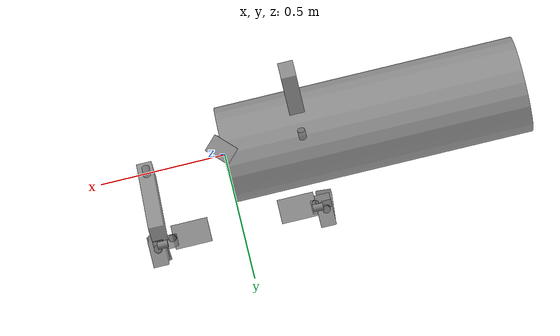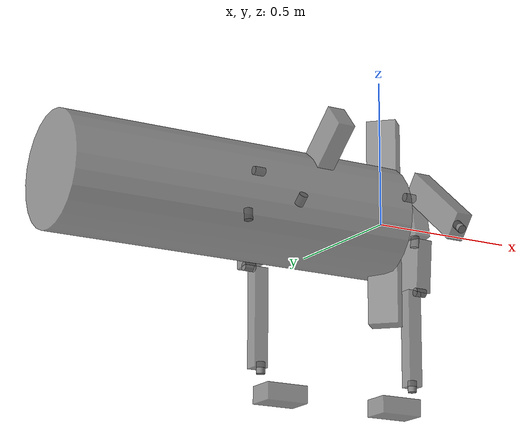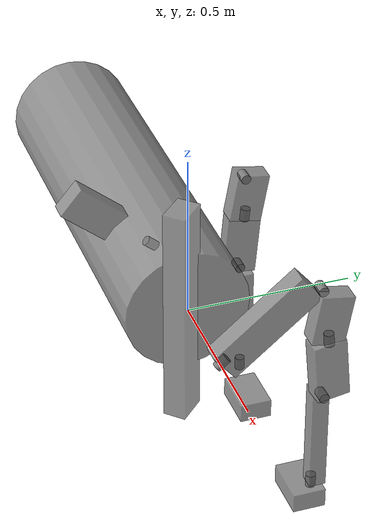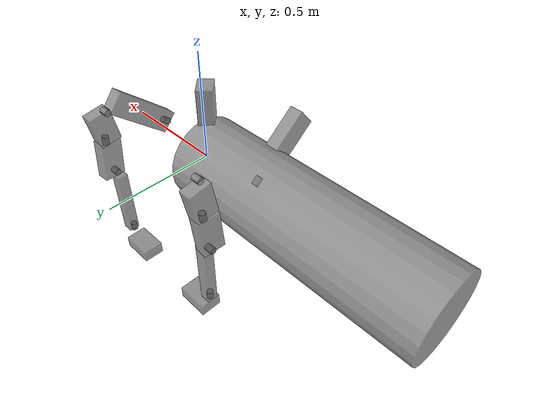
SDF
<?xml version="1.0" encoding="UTF-8" standalone="yes"?>
<sdf version="1.5">
    <model name="upperBodyXO_v1">
        <joint name="ra1_sho_abad" type="revolute">
            <axis>
                <dynamics>
                    <damping>0.1</damping>
                    <friction>0</friction>
                </dynamics>
                <limit>
                    <effort>100</effort>
                    <lower>-0.17453</lower>
                    <upper>2.0944</upper>
                    <velocity>12</velocity>
                </limit>
                <xyz>-0.64279 -0.76604 0</xyz>
            </axis>
            <child>r_ushou</child>
            <parent>pelvis</parent>
        </joint>
        <joint name="ra2_sho_flex" type="revolute">
            <axis>
                <dynamics>
                    <damping>0.1</damping>
                    <friction>0</friction>
                </dynamics>
                <limit>
                    <effort>100</effort>
                    <lower>-0.47647</lower>
                    <upper>2.0944</upper>
                    <velocity>12</velocity>
                </limit>
                <xyz>0 0 -1</xyz>
            </axis>
            <child>r_lshou</child>
            <parent>r_ushou</parent>
        </joint>
        <joint name="ra3_hum_rota" type="revolute">
            <axis>
                <dynamics>
                    <damping>0.1</damping>
                    <friction>0</friction>
                </dynamics>
                <limit>
                    <effort>100</effort>
                    <lower>-1.3963</lower>
                    <upper>0.87266</upper>
                    <velocity>12</velocity>
                </limit>
                <xyz>-0.99619 -0.087156 0</xyz>
            </axis>
            <child>r_uarm</child>
            <parent>r_lshou</parent>
        </joint>
        <joint name="ra4_elb_flex" type="revolute">
            <axis>
                <dynamics>
                    <damping>0.1</damping>
                    <friction>0</friction>
                </dynamics>
                <limit>
                    <effort>100</effort>
                    <lower>0</lower>
                    <upper>2.6704</upper>
                    <velocity>12</velocity>
                </limit>
                <xyz>0 0 -1</xyz>
            </axis>
            <child>r_larm</child>
            <parent>r_uarm</parent>
        </joint>
        <joint name="ra5_wri_rota" type="revolute">
            <axis>
                <dynamics>
                    <damping>0.1</damping>
                    <friction>0</friction>
                </dynamics>
                <limit>
                    <effort>100</effort>
                    <lower>-1.5708</lower>
                    <upper>1.5708</upper>
                    <velocity>10</velocity>
                </limit>
                <xyz>-1 -9.7145e-17 0</xyz>
            </axis>
            <child>r_hand</child>
            <parent>r_larm</parent>
        </joint>
        <joint name="la1_sho_abad" type="revolute">
            <axis>
                <dynamics>
                    <damping>0.1</damping>
                    <friction>0</friction>
                </dynamics>
                <limit>
                    <effort>100</effort>
                    <lower>-0.17453</lower>
                    <upper>2.0944</upper>
                    <velocity>12</velocity>
                </limit>
                <xyz>0.64279 0.76604 0</xyz>
            </axis>
            <child>l_ushou</child>
            <parent>pelvis</parent>
        </joint>
        <joint name="la2_sho_flex" type="revolute">
            <axis>
                <dynamics>
                    <damping>0.1</damping>
                    <friction>0</friction>
                </dynamics>
                <limit>
                    <effort>100</effort>
                    <lower>-0.47647</lower>
                    <upper>2.0944</upper>
                    <velocity>12</velocity>
                </limit>
                <xyz>0 0 -1</xyz>
            </axis>
            <child>l_lshou</child>
            <parent>l_ushou</parent>
        </joint>
        <joint name="la3_hum_rota" type="revolute">
            <axis>
                <dynamics>
                    <damping>0.1</damping>
                    <friction>0</friction>
                </dynamics>
                <limit>
                    <effort>100</effort>
                    <lower>-1.3963</lower>
                    <upper>0.87266</upper>
                    <velocity>12</velocity>
                </limit>
                <xyz>0.99619 0.087156 0</xyz>
            </axis>
            <child>l_uarm</child>
            <parent>l_lshou</parent>
        </joint>
        <joint name="la4_elb_flex" type="revolute">
            <axis>
                <dynamics>
                    <damping>0.1</damping>
                    <friction>0</friction>
                </dynamics>
                <limit>
                    <effort>100</effort>
                    <lower>0</lower>
                    <upper>2.6704</upper>
                    <velocity>12</velocity>
                </limit>
                <xyz>0 0 -1</xyz>
            </axis>
            <child>l_larm</child>
            <parent>l_uarm</parent>
        </joint>
        <joint name="la5_wri_rota" type="revolute">
            <axis>
                <dynamics>
                    <damping>0.1</damping>
                    <friction>0</friction>
                </dynamics>
                <limit>
                    <effort>100</effort>
                    <lower>-1.5708</lower>
                    <upper>1.5708</upper>
                    <velocity>10</velocity>
                </limit>
                <xyz>1 9.7145e-17 0</xyz>
            </axis>
            <child>l_hand</child>
            <parent>l_larm</parent>
        </joint>
        <joint name="ft3_l_hand" type="revolute">
            <axis>
                <dynamics>
                    <damping>0.1</damping>
                    <friction>0</friction>
                </dynamics>
                <limit>
                    <effort>200</effort>
                    <lower>-0.005</lower>
                    <upper>0.005</upper>
                    <velocity>3</velocity>
                </limit>
                <xyz>9.7145e-17 -1 0</xyz>
            </axis>
            <child>l_hand_FT</child>
            <parent>l_hand</parent>
        </joint>
        <joint name="ft4_r_hand" type="revolute">
            <axis>
                <dynamics>
                    <damping>0.1</damping>
                    <friction>0</friction>
                </dynamics>
                <limit>
                    <effort>200</effort>
                    <lower>-0.005</lower>
                    <upper>0.005</upper>
                    <velocity>4</velocity>
                </limit>
                <xyz>-9.7145e-17 1 0</xyz>
            </axis>
            <child>r_hand_FT</child>
            <parent>r_hand</parent>
        </joint>
        <link name="pelvis">
            <inertial>
                <inertia>
                    <ixx>0.086831</ixx>
                    <ixy>-9.8e-05</ixy>
                    <ixz>-1.4e-06</ixz>
                    <iyy>0.12768</iyy>
                    <iyz>-0.019368</iyz>
                    <izz>0.12709</izz>
                </inertia>
                <mass>12.8142</mass>
                <pose>0.00115 0.02425 0.00012 0 -1.5708 0</pose>
            </inertial>
            <pose>0 0 0 0 0 0</pose>
            <sensor name="imu_sensor_at_pelvis_frame" type="imu">
                <imu>
                    <noise>
                        <accel>
                            <bias_mean>0.1</bias_mean>
                            <bias_stddev>0.001</bias_stddev>
                            <mean>0</mean>
                            <stddev>0.017</stddev>
                        </accel>
                        <rate>
                            <bias_mean>7.5e-06</bias_mean>
                            <bias_stddev>8e-07</bias_stddev>
                            <mean>0</mean>
                            <stddev>0.0002</stddev>
                        </rate>
                        <type>gaussian</type>
                    </noise>
                </imu>
                <pose>0 0 0 0 0 0</pose>
                <update_rate>1000</update_rate>
            </sensor>
            <visual name="pelvis_visual_box">
                <geometry>
                    <box>
                        <size>0.7 0.1 0.07</size>
                    </box>
                </geometry>
                <material>
                    <ambient>1 1 1 1</ambient>
                    <diffuse>0.5 0.5 0.5 1</diffuse>
                    <emissive>0 0 0 1</emissive>
                    <specular>1 1 1 1</specular>
                </material>
                <transparency>0.2</transparency>
                <pose>0 -0.02 0 0.7854 0 0</pose>
            </visual>
            <visual name="pelvis_visual_box">
                <geometry>
                    <cylinder>
                        <length>1.2</length>
                        <radius>0.1905</radius>
                    </cylinder>
                </geometry>
                <material>
                    <ambient>1 1 1 1</ambient>
                    <diffuse>0.5 0.5 0.5 1</diffuse>
                    <emissive>0 0 0 1</emissive>
                    <specular>1 1 1 1</specular>
                </material>
                <transparency>0.2</transparency>
                <pose>0 0 0.6 0 0 0</pose>
            </visual>
        </link>
        <link name="r_ushou">
            <inertial>
                <inertia>
                    <ixx>0.0017929</ixx>
                    <ixy>0.0017929</ixy>
                    <ixz>0.0046508</ixz>
                    <iyy>0.034874</iyy>
                    <iyz>0.0073972</iyz>
                    <izz>0.012524</izz>
                </inertia>
                <mass>4.8909</mass>
                <pose>0.0164 0.0039 -0.19416 0 0 0</pose>
            </inertial>
            <pose>0.036922 -0.0097288 -0.31433 0 1.5708 -2.2689</pose>
            <visual name="r_ushou_visual_jointCylinder">
                <geometry>
                    <cylinder>
                        <length>0.04</length>
                        <radius>0.015</radius>
                    </cylinder>
                </geometry>
                <material>
                    <ambient>0 0 0 1</ambient>
                    <diffuse>0.5 0.5 0.5 1</diffuse>
                    <emissive>0 0 0 1</emissive>
                    <specular>0 0 0 1</specular>
                </material>
                <pose>0 0 0 0 0 0</pose>
            </visual>
            <visual name="r_ushou_visual_box">
                <geometry>
                    <box>
                        <size>0.06 0.1 0.3302</size>
                    </box>
                </geometry>
                <material>
                    <ambient>1 1 1 1</ambient>
                    <diffuse>0.5 0.5 0.5 1</diffuse>
                    <emissive>0 0 0 1</emissive>
                    <specular>1 1 1 1</specular>
                </material>
                <transparency>0.2</transparency>
                <pose>0 0 -0.16307 0 0 0</pose>
            </visual>
        </link>
        <link name="r_lshou">
            <inertial>
                <inertia>
                    <ixx>0.0042548</ixx>
                    <ixy>0.0002492</ixy>
                    <ixz>-0.0002769</ixz>
                    <iyy>0.0076126</iyy>
                    <iyz>-5.2e-05</iyz>
                    <izz>0.007705</izz>
                </inertia>
                <mass>3.2262</mass>
                <pose>0.11093 0.01825 0.02571 0 0 0</pose>
            </inertial>
            <pose>0.21581 0.28249 -0.30798 3.1416 0 -3.0543</pose>
            <visual name="r_lshou_visual_jointCylinder">
                <geometry>
                    <cylinder>
                        <length>0.04</length>
                        <radius>0.015</radius>
                    </cylinder>
                </geometry>
                <material>
                    <ambient>0 0 0 1</ambient>
                    <diffuse>0.5 0.5 0.5 1</diffuse>
                    <emissive>0 0 0 1</emissive>
                    <specular>0 0 0 1</specular>
                </material>
                <pose>0 0 0 0 0 0</pose>
            </visual>
            <visual name="r_lshou_visual_box">
                <geometry>
                    <box>
                        <size>0.15494 0.1 0.06</size>
                    </box>
                </geometry>
                <material>
                    <ambient>1 1 1 1</ambient>
                    <diffuse>0.5 0.5 0.5 1</diffuse>
                    <emissive>0 0 0 1</emissive>
                    <specular>1 1 1 1</specular>
                </material>
                <transparency>0.2</transparency>
                <pose>0.0772 0.024536 0.024638 0 0 -0.087266</pose>
            </visual>
        </link>
        <link name="r_uarm">
            <inertial>
                <inertia>
                    <ixx>0.019109</ixx>
                    <ixy>0.0001927</ixy>
                    <ixz>-0.0025684</ixz>
                    <iyy>0.018812</iyy>
                    <iyz>-0.0002236</iyz>
                    <izz>0.011074</izz>
                </inertia>
                <mass>4.8829</mass>
                <pose>-0.00114 -0.00151 0.11122 0 0 0</pose>
            </inertial>
            <pose>0.061406 0.29874 -0.33889 0 -1.5708 -0.087266</pose>
            <visual name="r_uarm_visual_jointCylinder">
                <geometry>
                    <cylinder>
                        <length>0.04</length>
                        <radius>0.015</radius>
                    </cylinder>
                </geometry>
                <material>
                    <ambient>0 0 0 1</ambient>
                    <diffuse>0.5 0.5 0.5 1</diffuse>
                    <emissive>0 0 0 1</emissive>
                    <specular>0 0 0 1</specular>
                </material>
                <pose>0 0 0 0 0 0</pose>
            </visual>
            <visual name="r_uarm_visual_box">
                <geometry>
                    <box>
                        <size>0.06 0.1 0.18796</size>
                    </box>
                </geometry>
                <material>
                    <ambient>1 1 1 1</ambient>
                    <diffuse>0.5 0.5 0.5 1</diffuse>
                    <emissive>0 0 0 1</emissive>
                    <specular>1 1 1 1</specular>
                </material>
                <transparency>0.2</transparency>
                <pose>0 -0.0081788 0.09398 0 0 -0.087266</pose>
            </visual>
        </link>
        <link name="r_larm">
            <inertial>
                <inertia>
                    <ixx>0.0004628</ixx>
                    <ixy>0.0009098</ixy>
                    <ixz>-0.0004177</ixz>
                    <iyy>0.010386</iyy>
                    <iyz>-1.28e-05</iyz>
                    <izz>0.010507</izz>
                </inertia>
                <mass>0.69113</mass>
                <pose>0.11918 -0.02395 -0.03337 0 0 0</pose>
            </inertial>
            <pose>-0.12707 0.28225 -0.34524 3.1416 0 -3.1416</pose>
            <visual name="r_larm_visual_jointCylinder">
                <geometry>
                    <cylinder>
                        <length>0.04</length>
                        <radius>0.015</radius>
                    </cylinder>
                </geometry>
                <material>
                    <ambient>0 0 0 1</ambient>
                    <diffuse>0.5 0.5 0.5 1</diffuse>
                    <emissive>0 0 0 1</emissive>
                    <specular>0 0 0 1</specular>
                </material>
                <pose>0 0 0 0 0 0</pose>
            </visual>
            <visual name="r_larm_visual_box">
                <geometry>
                    <box>
                        <size>0.3429 0.05 0.05</size>
                    </box>
                </geometry>
                <material>
                    <ambient>1 1 1 1</ambient>
                    <diffuse>0.5 0.5 0.5 1</diffuse>
                    <emissive>0 0 0 1</emissive>
                    <specular>1 1 1 1</specular>
                </material>
                <transparency>0.2</transparency>
                <pose>0.17145 0.003048 -0.03683 0 0 0</pose>
            </visual>
        </link>
        <link name="r_hand">
            <inertial>
                <inertia>
                    <ixx>0.016224</ixx>
                    <ixy>0.000437</ixy>
                    <ixz>0.0051128</ixz>
                    <iyy>0.039465</iyy>
                    <iyz>-0.0003224</iyz>
                    <izz>0.034758</izz>
                </inertia>
                <mass>3.2281</mass>
                <pose>0.07931 0.00146 0.0648 0 0 0</pose>
            </inertial>
            <pose>-0.46997 0.27615 -0.30226 0 -1.5708 -9.7145e-17</pose>
            <visual name="r_hand_visual_jointCylinder">
                <geometry>
                    <cylinder>
                        <length>0.04</length>
                        <radius>0.015</radius>
                    </cylinder>
                </geometry>
                <material>
                    <ambient>0 0 0 1</ambient>
                    <diffuse>0.5 0.5 0.5 1</diffuse>
                    <emissive>0 0 0 1</emissive>
                    <specular>0 0 0 1</specular>
                </material>
                <pose>0 0 0 0 0 0</pose>
            </visual>
            <visual name="r_hand_visual_box">
                <geometry>
                    <box>
                        <size>0.1524 0.1 0.06</size>
                    </box>
                </geometry>
                <material>
                    <ambient>1 1 1 1</ambient>
                    <diffuse>0.5 0.5 0.5 1</diffuse>
                    <emissive>0 0 0 1</emissive>
                    <specular>1 1 1 1</specular>
                </material>
                <transparency>0.2</transparency>
                <pose>0.0762 0 0.083388 0 0 0</pose>
            </visual>
        </link>
        <link name="l_ushou">
            <inertial>
                <inertia>
                    <ixx>0.036159</ixx>
                    <ixy>0.0018219</ixy>
                    <ixz>-0.0046394</ixz>
                    <iyy>0.034888</iyy>
                    <iyz>-0.0074231</iyz>
                    <izz>0.012539</izz>
                </inertia>
                <mass>4.8909</mass>
                <pose>0.01647 0.00381 0.19425 0 0 0</pose>
            </inertial>
            <pose>0.036922 -0.0097288 0.31432 0 -1.5708 2.2689</pose>
            <visual name="l_ushou_visual_jointCylinder">
                <geometry>
                    <cylinder>
                        <length>0.04</length>
                        <radius>0.015</radius>
                    </cylinder>
                </geometry>
                <material>
                    <ambient>0 0 0 1</ambient>
                    <diffuse>0.5 0.5 0.5 1</diffuse>
                    <emissive>0 0 0 1</emissive>
                    <specular>0 0 0 1</specular>
                </material>
                <pose>0 0 0 0 0 0</pose>
            </visual>
            <visual name="l_ushou_visual_box">
                <geometry>
                    <box>
                        <size>0.06 0.1 0.3302</size>
                    </box>
                </geometry>
                <material>
                    <ambient>1 1 1 1</ambient>
                    <diffuse>0.5 0.5 0.5 1</diffuse>
                    <emissive>0 0 0 1</emissive>
                    <specular>1 1 1 1</specular>
                </material>
                <transparency>0.2</transparency>
                <pose>0 0 0.16307 0 0 0</pose>
            </visual>
        </link>
        <link name="l_lshou">
            <inertial>
                <inertia>
                    <ixx>0.0042649</ixx>
                    <ixy>0.0002646</ixy>
                    <ixz>0.0002986</ixz>
                    <iyy>0.0076452</iyy>
                    <iyz>5.18e-05</iyz>
                    <izz>0.0077414</izz>
                </inertia>
                <mass>3.231</mass>
                <pose>0.11087 0.0182 -0.02557 0 0 0</pose>
            </inertial>
            <pose>0.21581 0.28249 0.30797 3.1416 0 -3.0543</pose>
            <visual name="l_lshou_visual_jointCylinder">
                <geometry>
                    <cylinder>
                        <length>0.04</length>
                        <radius>0.015</radius>
                    </cylinder>
                </geometry>
                <material>
                    <ambient>0 0 0 1</ambient>
                    <diffuse>0.5 0.5 0.5 1</diffuse>
                    <emissive>0 0 0 1</emissive>
                    <specular>0 0 0 1</specular>
                </material>
                <pose>0 0 0 0 0 0</pose>
            </visual>
            <visual name="l_lshou_visual_box">
                <geometry>
                    <box>
                        <size>0.15494 0.1 0.06</size>
                    </box>
                </geometry>
                <material>
                    <ambient>1 1 1 1</ambient>
                    <diffuse>0.5 0.5 0.5 1</diffuse>
                    <emissive>0 0 0 1</emissive>
                    <specular>1 1 1 1</specular>
                </material>
                <transparency>0.2</transparency>
                <pose>0.0772 0.024536 -0.024638 0 0 -0.087266</pose>
            </visual>
        </link>
        <link name="l_uarm">
            <inertial>
                <inertia>
                    <ixx>0.019132</ixx>
                    <ixy>0.0001585</ixy>
                    <ixz>0.0025749</ixz>
                    <iyy>0.018815</iyy>
                    <iyz>0.0002531</iyz>
                    <izz>0.011079</izz>
                </inertia>
                <mass>4.8803</mass>
                <pose>-0.00112 -0.00157 -0.11125 0 0 0</pose>
            </inertial>
            <pose>0.061403 0.29873 0.33889 0 1.5708 0.087266</pose>
            <visual name="l_uarm_visual_jointCylinder">
                <geometry>
                    <cylinder>
                        <length>0.04</length>
                        <radius>0.015</radius>
                    </cylinder>
                </geometry>
                <material>
                    <ambient>0 0 0 1</ambient>
                    <diffuse>0.5 0.5 0.5 1</diffuse>
                    <emissive>0 0 0 1</emissive>
                    <specular>0 0 0 1</specular>
                </material>
                <pose>0 0 0 0 0 0</pose>
            </visual>
            <visual name="l_uarm_visual_box">
                <geometry>
                    <box>
                        <size>0.06 0.1 0.18796</size>
                    </box>
                </geometry>
                <material>
                    <ambient>1 1 1 1</ambient>
                    <diffuse>0.5 0.5 0.5 1</diffuse>
                    <emissive>0 0 0 1</emissive>
                    <specular>1 1 1 1</specular>
                </material>
                <transparency>0.2</transparency>
                <pose>0 -0.0081788 -0.09398 0 0 -0.087266</pose>
            </visual>
        </link>
        <link name="l_larm">
            <inertial>
                <inertia>
                    <ixx>0.0004628</ixx>
                    <ixy>0.0009098</ixy>
                    <ixz>0.0004177</ixz>
                    <iyy>0.010386</iyy>
                    <iyz>1.28e-05</iyz>
                    <izz>0.010507</izz>
                </inertia>
                <mass>0.69113</mass>
                <pose>0.11918 -0.02395 0.0337 0 0 0</pose>
            </inertial>
            <pose>-0.12708 0.28224 0.34524 3.1416 0 -3.1416</pose>
            <visual name="l_larm_visual_jointCylinder">
                <geometry>
                    <cylinder>
                        <length>0.04</length>
                        <radius>0.015</radius>
                    </cylinder>
                </geometry>
                <material>
                    <ambient>0 0 0 1</ambient>
                    <diffuse>0.5 0.5 0.5 1</diffuse>
                    <emissive>0 0 0 1</emissive>
                    <specular>0 0 0 1</specular>
                </material>
                <pose>0 0 0 0 0 0</pose>
            </visual>
            <visual name="l_larm_visual_box">
                <geometry>
                    <box>
                        <size>0.3429 0.05 0.05</size>
                    </box>
                </geometry>
                <material>
                    <ambient>1 1 1 1</ambient>
                    <diffuse>0.5 0.5 0.5 1</diffuse>
                    <emissive>0 0 0 1</emissive>
                    <specular>1 1 1 1</specular>
                </material>
                <transparency>0.2</transparency>
                <pose>0.17145 0.003048 0.03683 0 0 0</pose>
            </visual>
        </link>
        <link name="l_hand">
            <inertial>
                <inertia>
                    <ixx>0.015967</ixx>
                    <ixy>0.0002098</ixy>
                    <ixz>-0.0057656</ixz>
                    <iyy>0.039945</iyy>
                    <iyz>0.0002799</iyz>
                    <izz>0.034993</izz>
                </inertia>
                <mass>3.231</mass>
                <pose>0.07931 0.00146 -0.0648 0 0 0</pose>
            </inertial>
            <pose>-0.46998 0.27615 0.30226 0 1.5708 9.7145e-17</pose>
            <visual name="l_hand_visual_jointCylinder">
                <geometry>
                    <cylinder>
                        <length>0.04</length>
                        <radius>0.015</radius>
                    </cylinder>
                </geometry>
                <material>
                    <ambient>0 0 0 1</ambient>
                    <diffuse>0.5 0.5 0.5 1</diffuse>
                    <emissive>0 0 0 1</emissive>
                    <specular>0 0 0 1</specular>
                </material>
                <pose>0 0 0 0 0 0</pose>
            </visual>
            <visual name="l_hand_visual_box">
                <geometry>
                    <box>
                        <size>0.1524 0.1 0.06</size>
                    </box>
                </geometry>
                <material>
                    <ambient>1 1 1 1</ambient>
                    <diffuse>0.5 0.5 0.5 1</diffuse>
                    <emissive>0 0 0 1</emissive>
                    <specular>1 1 1 1</specular>
                </material>
                <transparency>0.2</transparency>
                <pose>0.0762 0 -0.083388 0 0 0</pose>
            </visual>
        </link>
        <link name="l_hand_FT">
            <inertial>
                <inertia>
                    <ixx>0.001</ixx>
                    <ixy>0</ixy>
                    <ixz>0</ixz>
                    <iyy>0.001</iyy>
                    <iyz>0</iyz>
                    <izz>0.001</izz>
                </inertia>
                <mass>0.001</mass>
                <pose>0 0 0 0 0 1.7453e-05</pose>
            </inertial>
            <pose>-0.55338 0.27615 0.30226 -1.5708 0 -3.1416</pose>
        </link>
        <link name="r_hand_FT">
            <inertial>
                <inertia>
                    <ixx>0.001</ixx>
                    <ixy>0</ixy>
                    <ixz>0</ixz>
                    <iyy>0.001</iyy>
                    <iyz>0</iyz>
                    <izz>0.001</izz>
                </inertia>
                <mass>0.001</mass>
                <pose>0 0 0 0 0 1.7453e-05</pose>
            </inertial>
            <pose>-0.38657 0.27615 -0.30226 -1.5708 0 9.7145e-17</pose>
        </link>
        <pose>0 0 0 0 -1.5708 0</pose>
    </model>
</sdf>
